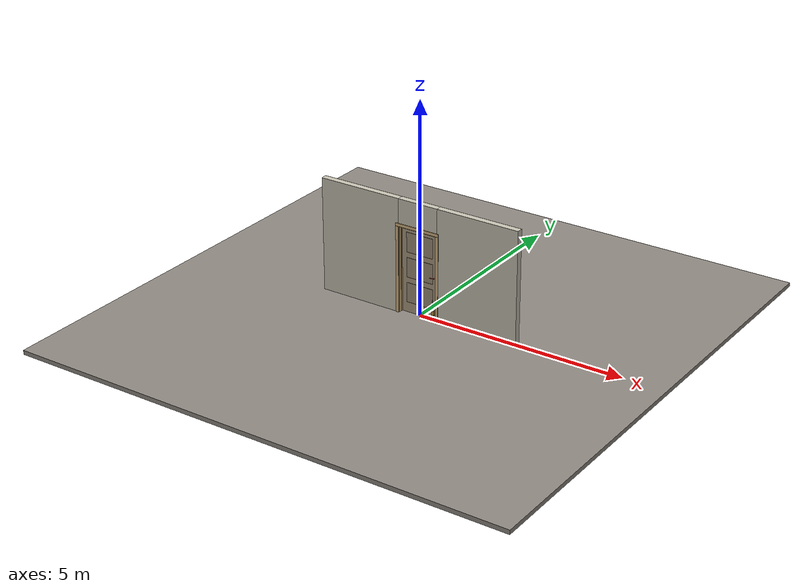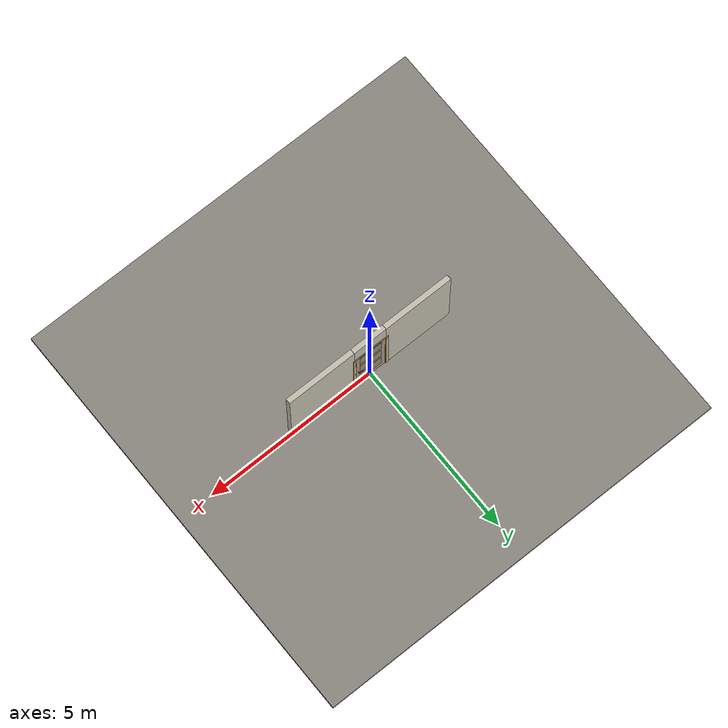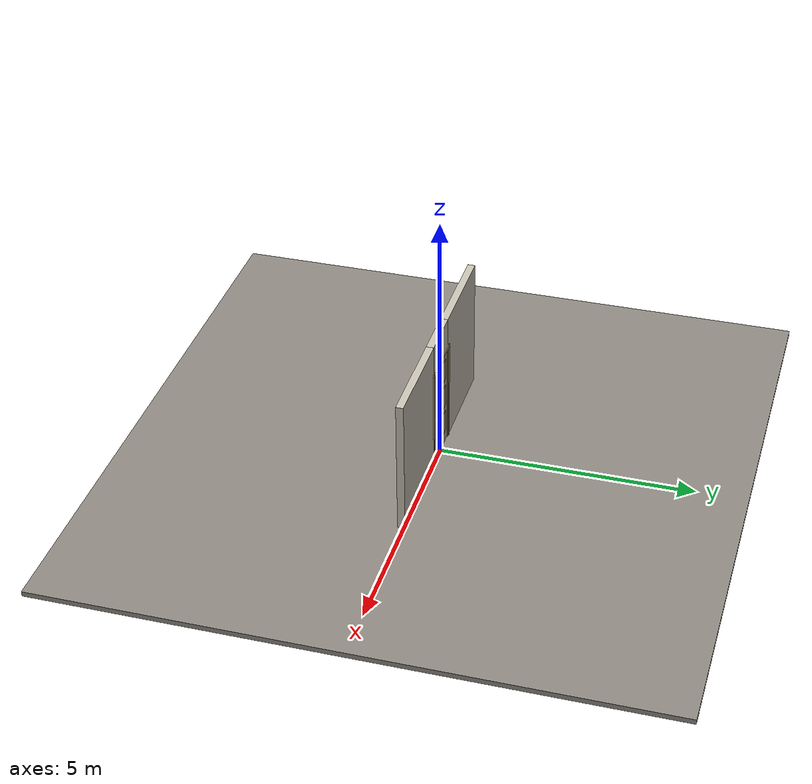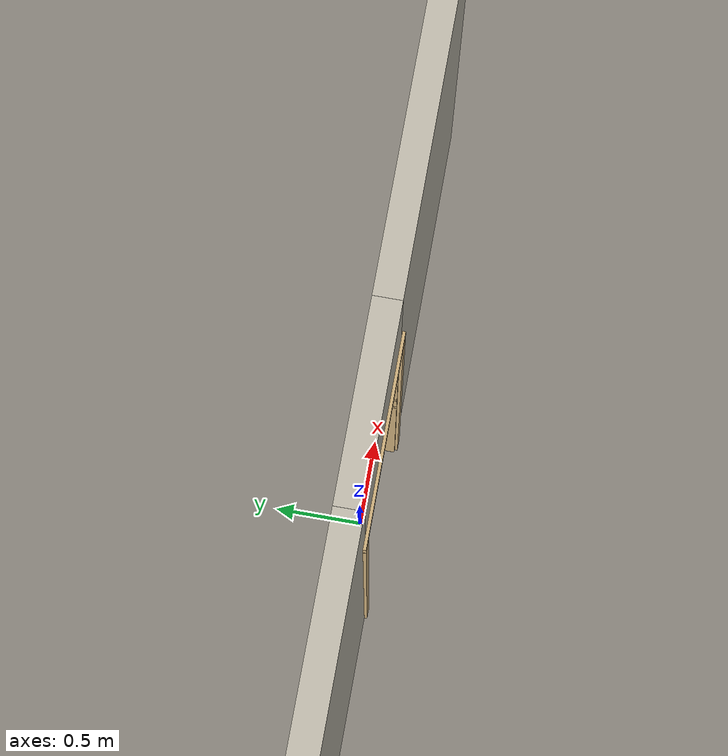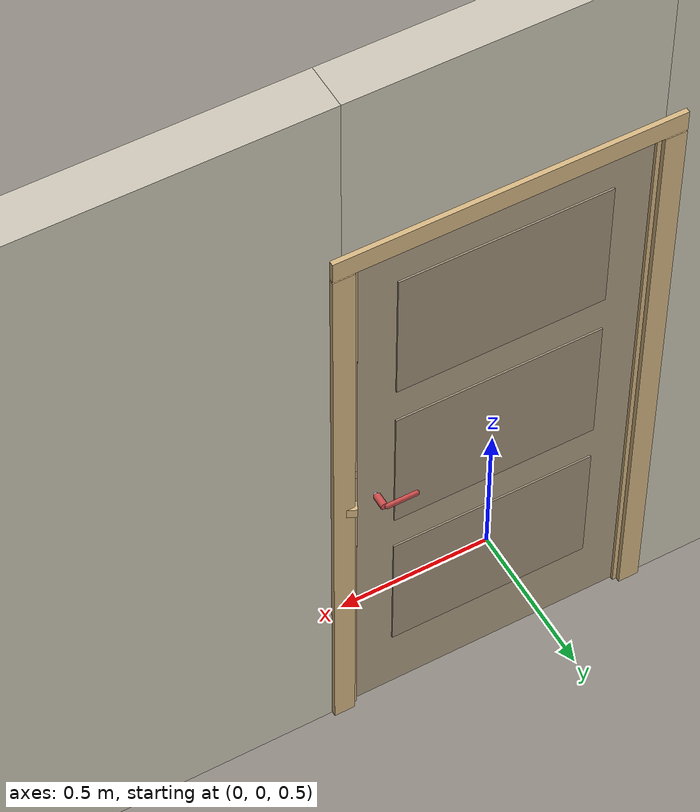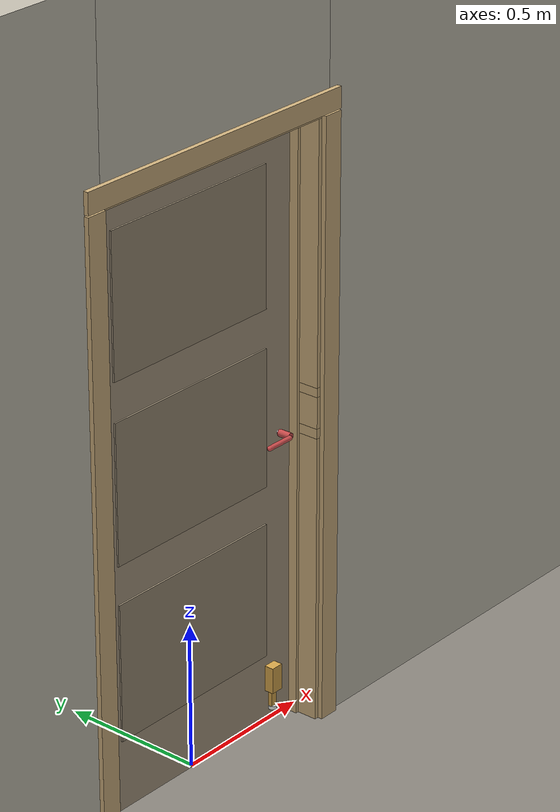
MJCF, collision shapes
<?xml version="1.0" ?>
<mujoco model="db0229_swing_single_full">
  <compiler angle="radian" meshdir="../../hardware" texturedir="../../textures" autolimits="true" inertiafromgeom="false"/>
  <option timestep="0.002" integrator="implicitfast" cone="elliptic" impratio="10" noslip_iterations="3">
    <flag multiccd="enable"/>
  </option>
  <size memory="16M"/>
  <default>
    <geom condim="4" solref="0.005 1" solimp="0.95 0.99 0.001"/>
    <joint solreflimit="0.005 1" solimplimit="0.95 0.99 0.001"/>
    <tendon solreflimit="0.005 1"/>
    <equality solref="0.002 1"/>
  </default>
  <visual>
    <headlight ambient="0.4 0.4 0.4" diffuse="0.7 0.7 0.7" specular="0.2 0.2 0.2"/>
    <quality shadowsize="4096"/>
    <map znear="0.01" zfar="60"/>
  </visual>
  <asset>
    <mesh name="hinge_96510cf394" file="hinge_96510cf394.obj"/>
    <mesh name="hinge_jamb_7fd4ca52b2" file="hinge_jamb_7fd4ca52b2.obj"/>
    <mesh name="lever_748f08efca" file="lever_748f08efca.obj"/>
    <material name="mat_floor" rgba="0.55 0.53 0.5 1" specular="0.2" shininess="0.15" reflectance="0"/>
    <material name="mat_wall" rgba="0.78 0.76 0.7 1" specular="0.2" shininess="0.1" reflectance="0"/>
    <material name="mat_leaf" rgba="0.66 0.6 0.5 1" specular="0.2" shininess="0.45" reflectance="0"/>
    <material name="mat_leaf_panel" rgba="0.607 0.552 0.46 1" specular="0.2" shininess="0.45" reflectance="0"/>
    <material name="mat_hinge" rgba="0.65 0.66 0.68 1" specular="0.74" shininess="0.5" reflectance="0.36"/>
    <material name="mat_op_chrome" rgba="0.9 0.9 0.92 1" specular="0.8" shininess="0.9" reflectance="0.4"/>
    <material name="mat_trim" rgba="0.85 0.66 0.3 1" specular="0.8" shininess="0.75" reflectance="0.4"/>
    <material name="mat_bolt" rgba="0.85 0.66 0.3 1" specular="0.8" shininess="0.75" reflectance="0.4"/>
    <material name="mat_deadbolt" rgba="0.85 0.66 0.3 1" specular="0.8" shininess="0.75" reflectance="0.4"/>
    <material name="mat_frame" rgba="0.82 0.7 0.5 1" specular="0.2" shininess="0.45" reflectance="0"/>
    <material name="mat_kickdown" rgba="0.85 0.66 0.3 1" specular="0.8" shininess="0.75" reflectance="0.4"/>
    <material name="mat_kickdown_pad" rgba="0.92 0.92 0.9 1" specular="0.2" shininess="0.6" reflectance="0"/>
    <texture name="skybox" type="skybox" builtin="gradient" rgb1="0.6 0.7 0.85" rgb2="0.9 0.92 0.95" width="256" height="256"/>
  </asset>
  <worldbody>
    <light name="sun" pos="1.5 -2.5 4" dir="-0.3 0.5 -0.8" directional="true" diffuse="0.8 0.8 0.8" specular="0.3 0.3 0.3" castshadow="true"/>
    <light name="fill" pos="-1.5 2.5 3" dir="0.3 -0.5 -0.7" directional="true" diffuse="0.35 0.35 0.4" castshadow="false"/>
    <camera name="robot_view" pos="0 -2.590187 1.734312" xyaxes="1 0 0 0 0.26963 0.962964" fovy="52"/>
    <camera name="far_view" pos="0 2.494187 1.734312" xyaxes="-1 0 0 0 -0.26963 0.962964" fovy="52"/>
    <camera name="iso" pos="1.932062 -2.183438 2.141063" xyaxes="0.741536 0.670913 0 -0.242917 0.268487 0.932151" fovy="46"/>
    <camera name="detail_handle" pos="0.4869 -0.8725 1.296" xyaxes="0.97561 0.219512 0 -0.070934 0.315262 0.94635" fovy="38"/>
    <geom name="floor" type="box" size="6 6 0.05" pos="0 0 -0.05" material="mat_floor" group="0" contype="1" conaffinity="1" friction="0.8 0.005 0.0001" density="2400"/>
    <geom name="wall_left" type="box" size="1.01025 0.0725 1.35" pos="-1.48975 -0.048 1.35" material="mat_wall" group="0" contype="1" conaffinity="1" friction="0.6 0.005 0.0001" density="800"/>
    <geom name="wall_right" type="box" size="0.99525 0.0725 1.35" pos="1.50475 -0.048 1.35" material="mat_wall" group="0" contype="1" conaffinity="1" friction="0.6 0.005 0.0001" density="800"/>
    <geom name="wall_header" type="box" size="0.4945 0.0725 0.303" pos="0.015 -0.048 2.397" material="mat_wall" group="0" contype="1" conaffinity="1" friction="0.6 0.005 0.0001" density="800"/>
    <geom name="hinge_0_jamb" type="mesh" mesh="hinge_jamb_7fd4ca52b2" pos="-0.4575 0.0245 0.259" quat="0 1 0 0" material="mat_hinge" group="1" contype="0" conaffinity="0" density="7850"/>
    <geom name="hinge_1_jamb" type="mesh" mesh="hinge_jamb_7fd4ca52b2" pos="-0.4575 0.0245 1.025" quat="0 1 0 0" material="mat_hinge" group="1" contype="0" conaffinity="0" density="7850"/>
    <geom name="hinge_2_jamb" type="mesh" mesh="hinge_jamb_7fd4ca52b2" pos="-0.4575 0.0245 1.861" quat="0 1 0 0" material="mat_hinge" group="1" contype="0" conaffinity="0" density="7850"/>
    <geom name="leaf_deadbolt_strike_b" type="box" size="0.0155 0.003 0.0005" pos="0.46 0 1.1375" quat="-0.5 -0.5 0.5 0.5" material="mat_deadbolt" group="1" contype="0" conaffinity="0" density="7800"/>
    <geom name="leaf_deadbolt_strike_l" type="box" size="0.003 0.0155 0.0005" pos="0.46 0.0125 1.156" quat="-0.5 -0.5 0.5 0.5" material="mat_deadbolt" group="1" contype="0" conaffinity="0" density="7800"/>
    <geom name="leaf_deadbolt_strike_t" type="box" size="0.0155 0.003 0.0005" pos="0.46 0 1.1745" quat="-0.5 -0.5 0.5 0.5" material="mat_deadbolt" group="1" contype="0" conaffinity="0" density="7800"/>
    <geom name="leaf_deadbolt_strike_r" type="box" size="0.003 0.0155 0.0005" pos="0.46 -0.0125 1.156" quat="-0.5 -0.5 0.5 0.5" material="mat_deadbolt" group="1" contype="0" conaffinity="0" density="7800"/>
    <geom name="jamb_hinge" type="box" size="0.0095 0.0725 1.0225" pos="-0.47 -0.048 1.0225" material="mat_frame" group="0" contype="1" conaffinity="1" friction="0.6 0.005 0.0001" density="400"/>
    <geom name="strike_1016_wall_n" type="box" size="0.0245 0.056325 0.0167" pos="0.485 -0.064175 1.016" material="mat_frame" group="0" contype="1" conaffinity="1" friction="0.6 0.005 0.0001" density="400"/>
    <geom name="strike_1016_wall_p" type="box" size="0.0245 0.008 0.0167" pos="0.485 0.01585 1.016" material="mat_frame" group="0" contype="1" conaffinity="1" friction="0.6 0.005 0.0001" density="400"/>
    <geom name="strike_1016_ramp" type="box" size="0.0245 0.01649 0.0167" pos="0.489636 0.028673 1.016" quat="0.977148 0 0 -0.212558" material="mat_frame" group="0" contype="1" conaffinity="1" friction="0.12 0.005 0.0001" density="400"/>
    <geom name="strike_1016_back" type="box" size="0.01615 0.00785 0.0167" pos="0.49335 0 1.016" material="mat_frame" group="0" contype="1" conaffinity="1" friction="0.6 0.005 0.0001" density="400"/>
    <geom name="strike_1156_wall_n" type="box" size="0.0245 0.0555 0.0155" pos="0.485 -0.065 1.156" material="mat_frame" group="0" contype="1" conaffinity="1" friction="0.6 0.005 0.0001" density="400"/>
    <geom name="strike_1156_wall_p" type="box" size="0.0245 0.0075 0.0155" pos="0.485 0.017 1.156" material="mat_frame" group="0" contype="1" conaffinity="1" friction="0.6 0.005 0.0001" density="400"/>
    <geom name="strike_1156_back" type="box" size="0.0098 0.0095 0.0155" pos="0.4997 0 1.156" material="mat_frame" group="0" contype="1" conaffinity="1" friction="0.6 0.005 0.0001" density="400"/>
    <geom name="jamb_strike_0" type="box" size="0.0245 0.0725 0.49965" pos="0.485 -0.048 0.49965" material="mat_frame" group="0" contype="1" conaffinity="1" friction="0.6 0.005 0.0001" density="400"/>
    <geom name="jamb_strike_1" type="box" size="0.0245 0.0725 0.0539" pos="0.485 -0.048 1.0866" material="mat_frame" group="0" contype="1" conaffinity="1" friction="0.6 0.005 0.0001" density="400"/>
    <geom name="jamb_strike_2" type="box" size="0.0245 0.0725 0.43675" pos="0.485 -0.048 1.60825" material="mat_frame" group="0" contype="1" conaffinity="1" friction="0.6 0.005 0.0001" density="400"/>
    <geom name="jamb_head" type="box" size="0.4945 0.0725 0.0095" pos="0.015 -0.048 2.0545" material="mat_frame" group="0" contype="1" conaffinity="1" friction="0.6 0.005 0.0001" density="400"/>
    <geom name="head_stud" type="box" size="0.4945 0.0725 0.015" pos="0.015 -0.048 2.079" material="mat_wall" group="0" contype="1" conaffinity="1" friction="0.6 0.005 0.0001" density="500"/>
    <geom name="stop_hinge" type="box" size="0.0055 0.016 1.0225" pos="-0.455 -0.034 1.0225" material="mat_frame" group="0" contype="1" conaffinity="1" friction="0.6 0.005 0.0001" density="400"/>
    <geom name="stop_strike" type="box" size="0.0055 0.016 1.0225" pos="0.455 -0.034 1.0225" material="mat_frame" group="0" contype="1" conaffinity="1" friction="0.6 0.005 0.0001" density="400"/>
    <geom name="stop_head" type="box" size="0.4605 0.016 0.0055" pos="0 -0.034 2.0395" material="mat_frame" group="0" contype="1" conaffinity="1" friction="0.6 0.005 0.0001" density="400"/>
    <geom name="casing_l_n" type="box" size="0.035 0.008 1.032" pos="-0.5095 -0.1285 1.0225" material="mat_frame" group="2" contype="0" conaffinity="0" density="400"/>
    <geom name="casing_r_n" type="box" size="0.035 0.008 1.032" pos="0.5095 -0.1285 1.0225" material="mat_frame" group="2" contype="0" conaffinity="0" density="400"/>
    <geom name="casing_h_n" type="box" size="0.5445 0.008 0.035" pos="0 -0.1285 2.094" material="mat_frame" group="2" contype="0" conaffinity="0" density="400"/>
    <geom name="casing_l_p" type="box" size="0.035 0.008 1.032" pos="-0.5095 0.0325 1.0225" material="mat_frame" group="2" contype="0" conaffinity="0" density="400"/>
    <geom name="casing_r_p" type="box" size="0.035 0.008 1.032" pos="0.5095 0.0325 1.0225" material="mat_frame" group="2" contype="0" conaffinity="0" density="400"/>
    <geom name="casing_h_p" type="box" size="0.5445 0.008 0.035" pos="0 0.0325 2.094" material="mat_frame" group="2" contype="0" conaffinity="0" density="400"/>
    <site name="approach_point" pos="0 -1.5 0" quat="1 0 0 0" size="0.05" rgba="0.2 0.9 0.2 0.5" group="4"/>
    <site name="goal_point" pos="0 1.5 0" quat="1 0 0 0" size="0.05" rgba="0.2 0.9 0.2 0.5" group="4"/>
    <site name="door_plane_center" pos="0 0 1.0225" quat="1 0 0 0" size="0.02" rgba="0.2 0.9 0.2 0.5" group="4"/>
    <body name="leaf" pos="-0.4605 0 0">
      <inertial pos="0.470487 -0.001327 0.984596" mass="27.021886" quat="0.511091 0.513302 0.484665 -0.490313" diaginertia="1.996078038 9.822534839 11.810796311"/>
      <joint name="leaf_hinge" type="hinge" axis="0 0 1" pos="0.003 0.0245 0" limited="true" range="0 1.919862" damping="0.30611" frictionloss="0.274745" armature="0.02"/>
      <geom name="leaf_slab" type="box" size="0.457 0.0175 1.016" pos="0.46 0 1.025" material="mat_leaf" group="0" contype="1" conaffinity="1" friction="0.35 0.005 0.0001" density="1"/>
      <geom name="leaf_panel_0_n" type="box" size="0.33646 0.003 0.23448" pos="0.46 -0.0205 0.487" material="mat_leaf_panel" group="1" contype="0" conaffinity="0" density="1"/>
      <geom name="leaf_panel_0_p" type="box" size="0.33646 0.003 0.23448" pos="0.46 0.0205 0.487" material="mat_leaf_panel" group="1" contype="0" conaffinity="0" density="1"/>
      <geom name="leaf_panel_1_n" type="box" size="0.33646 0.003 0.23448" pos="0.46 -0.0205 1.08596" material="mat_leaf_panel" group="1" contype="0" conaffinity="0" density="1"/>
      <geom name="leaf_panel_1_p" type="box" size="0.33646 0.003 0.23448" pos="0.46 0.0205 1.08596" material="mat_leaf_panel" group="1" contype="0" conaffinity="0" density="1"/>
      <geom name="leaf_panel_2_n" type="box" size="0.33646 0.003 0.23448" pos="0.46 -0.0205 1.68492" material="mat_leaf_panel" group="1" contype="0" conaffinity="0" density="1"/>
      <geom name="leaf_panel_2_p" type="box" size="0.33646 0.003 0.23448" pos="0.46 0.0205 1.68492" material="mat_leaf_panel" group="1" contype="0" conaffinity="0" density="1"/>
      <geom name="hinge_0" type="mesh" mesh="hinge_96510cf394" pos="0.003 0.0245 0.259" quat="0 1 0 0" material="mat_hinge" group="1" contype="0" conaffinity="0" density="7850"/>
      <geom name="hinge_1" type="mesh" mesh="hinge_96510cf394" pos="0.003 0.0245 1.025" quat="0 1 0 0" material="mat_hinge" group="1" contype="0" conaffinity="0" density="7850"/>
      <geom name="hinge_2" type="mesh" mesh="hinge_96510cf394" pos="0.003 0.0245 1.861" quat="0 1 0 0" material="mat_hinge" group="1" contype="0" conaffinity="0" density="7850"/>
      <geom name="leaf_latch_bolt_faceplate" type="box" size="0.0006 0.01235 0.0267" pos="0.9164 0 1.016" material="mat_bolt" group="1" contype="0" conaffinity="0" density="8500"/>
      <geom name="leaf_deadbolt_faceplate" type="box" size="0.0006 0.014 0.0245" pos="0.9164 0 1.156" material="mat_deadbolt" group="1" contype="0" conaffinity="0" density="8500"/>
      <geom name="kickdown_housing" type="box" size="0.022 0.016 0.045" pos="0.817 -0.0335 0.169" material="mat_kickdown" group="2" contype="0" conaffinity="0" density="8500"/>
      <geom name="kickdown_arm" type="box" size="0.012 0.006 0.045" pos="0.817 -0.0295 0.104" material="mat_kickdown" group="2" contype="0" conaffinity="0" density="8500"/>
      <geom name="kickdown_pad" type="cylinder" size="0.014 0.006" pos="0.817 -0.0295 0.061" material="mat_kickdown_pad" group="2" contype="0" conaffinity="0" density="1200"/>
      <site name="leaf_edge_mid" pos="0.917 0 1.016" quat="1 0 0 0" size="0.02" rgba="0.2 0.9 0.2 0.5" group="4"/>
      <body name="leaf_handle" pos="0.857 0 1.016">
        <inertial pos="-0.024417 0 0" mass="0.839807" quat="0.707107 0 0 -0.707107" diaginertia="0.001182467 0.002815434 0.003861215"/>
        <joint name="leaf_handle_hinge" type="hinge" axis="0 -1 0" limited="true" range="0 0.87" damping="0.205084" frictionloss="0.04" stiffness="0.9" springref="-0.444444" armature="0.01"/>
        <geom name="leaf_handle_spindle" type="cylinder" size="0.006 0.0255" pos="0 0 0" quat="0.707107 -0.707107 0 0" material="mat_op_chrome" group="1" contype="0" conaffinity="0" density="7850"/>
        <geom name="leaf_handle_lever_n" type="mesh" mesh="lever_748f08efca" pos="0 -0.0175 0" quat="0.707107 0.707107 0 0" material="mat_op_chrome" group="1" contype="0" conaffinity="0" density="3000"/>
        <geom name="leaf_handle_lever_col_n" type="capsule" size="0.008 0.048" pos="-0.056 -0.0725 0" quat="0.707107 0 -0.707107 0" material="mat_op_chrome" group="3" contype="1" conaffinity="1" rgba="0.8 0.3 0.3 0.25" friction="0.7 0.01 0.0001" density="3000"/>
        <geom name="leaf_handle_hub_col_n" type="cylinder" size="0.012 0.022" pos="0 -0.0475 0" quat="0.707107 -0.707107 0 0" material="mat_op_chrome" group="3" contype="1" conaffinity="1" rgba="0.8 0.3 0.3 0.25" friction="0.6 0.005 0.0001" density="3000"/>
        <geom name="leaf_handle_lever_p" type="mesh" mesh="lever_748f08efca" pos="0 0.0175 0" quat="-0.707107 0.707107 0 0" material="mat_op_chrome" group="1" contype="0" conaffinity="0" density="3000"/>
        <geom name="leaf_handle_lever_col_p" type="capsule" size="0.008 0.048" pos="-0.056 0.0725 0" quat="0.707107 0 -0.707107 0" material="mat_op_chrome" group="3" contype="1" conaffinity="1" rgba="0.8 0.3 0.3 0.25" friction="0.7 0.01 0.0001" density="3000"/>
        <geom name="leaf_handle_hub_col_p" type="cylinder" size="0.012 0.022" pos="0 0.0475 0" quat="0.707107 -0.707107 0 0" material="mat_op_chrome" group="3" contype="1" conaffinity="1" rgba="0.8 0.3 0.3 0.25" friction="0.6 0.005 0.0001" density="3000"/>
        <site name="leaf_handle_grip_n" pos="-0.0896 -0.0725 0" quat="1 0 0 0" size="0.012" rgba="0.2 0.9 0.2 0.5" group="4"/>
        <site name="leaf_handle_grip_p" pos="-0.0896 0.0725 0" quat="1 0 0 0" size="0.012" rgba="0.2 0.9 0.2 0.5" group="4"/>
      </body>
      <body name="leaf_latch_bolt" pos="0.917 0 1.016">
        <inertial pos="-0.00865 0 0" mass="0.041419" quat="0.92388 -0.382683 0 0" diaginertia="0.000000798 0.000005598 0.000005598"/>
        <joint name="leaf_latch_bolt_slide" type="slide" axis="-1 0 0" limited="true" range="0 0.0127" damping="2" frictionloss="0.3" stiffness="300" springref="-0.008333" armature="0.1"/>
        <geom name="leaf_latch_bolt_capsule" type="capsule" size="0.00635 0.015" pos="-0.00865 0 0" quat="0.707107 0 0.707107 0" material="mat_bolt" group="0" contype="1" conaffinity="1" friction="0.2 0.005 0.0001" density="8500"/>
      </body>
      <body name="leaf_deadbolt" pos="0.917 0 1.156">
        <inertial pos="-0.0023 0 0" mass="0.18836" quat="0 0 0.707107 0.707107" diaginertia="0.000013829 0.000052194 0.000057986"/>
        <geom name="leaf_deadbolt_box" type="box" size="0.0277 0.008 0.0125" pos="-0.0023 0 0" material="mat_deadbolt" group="0" contype="1" conaffinity="1" friction="0.3 0.005 0.0001" density="8500"/>
      </body>
    </body>
  </worldbody>
  <tendon>
    <fixed name="leaf_latch_bolt_coupling" limited="true" range="0 10">
      <joint joint="leaf_latch_bolt_slide" coef="1"/>
      <joint joint="leaf_handle_hinge" coef="-0.016076"/>
    </fixed>
  </tendon>
  <sensor>
    <jointpos name="leaf_hinge_pos" joint="leaf_hinge"/>
    <jointvel name="leaf_hinge_vel" joint="leaf_hinge"/>
    <jointpos name="leaf_handle_hinge_pos" joint="leaf_handle_hinge"/>
    <jointvel name="leaf_handle_hinge_vel" joint="leaf_handle_hinge"/>
    <jointpos name="leaf_latch_bolt_slide_pos" joint="leaf_latch_bolt_slide"/>
    <jointvel name="leaf_latch_bolt_slide_vel" joint="leaf_latch_bolt_slide"/>
  </sensor>
</mujoco>
